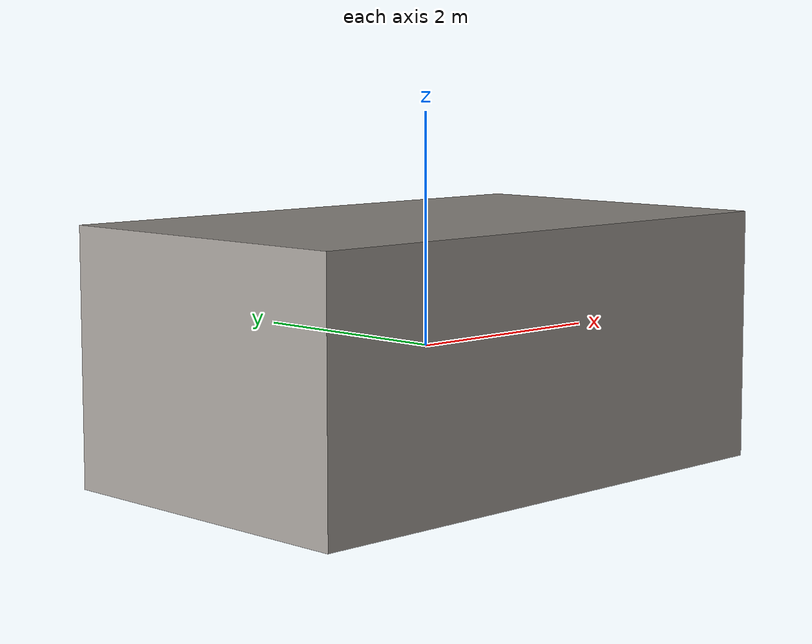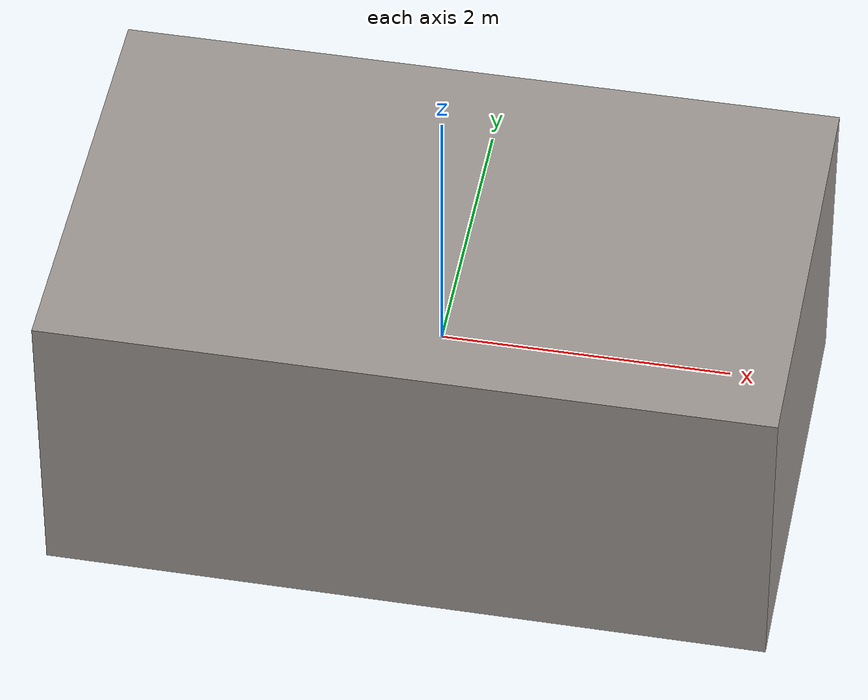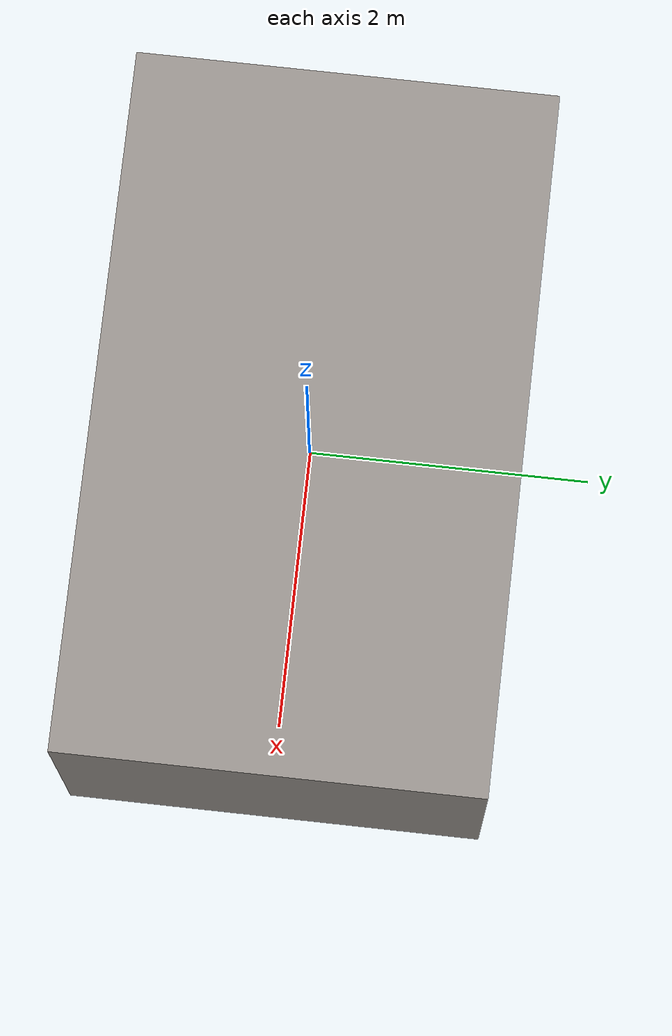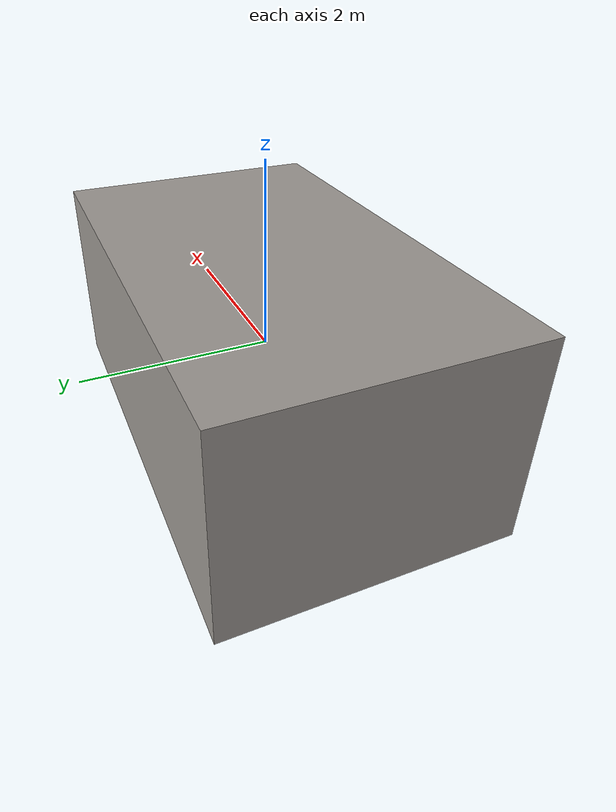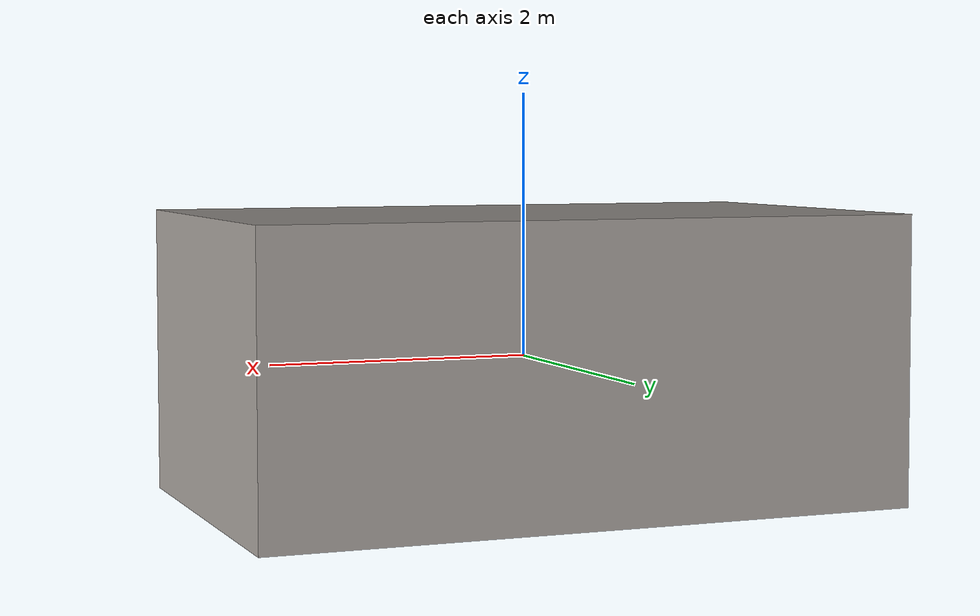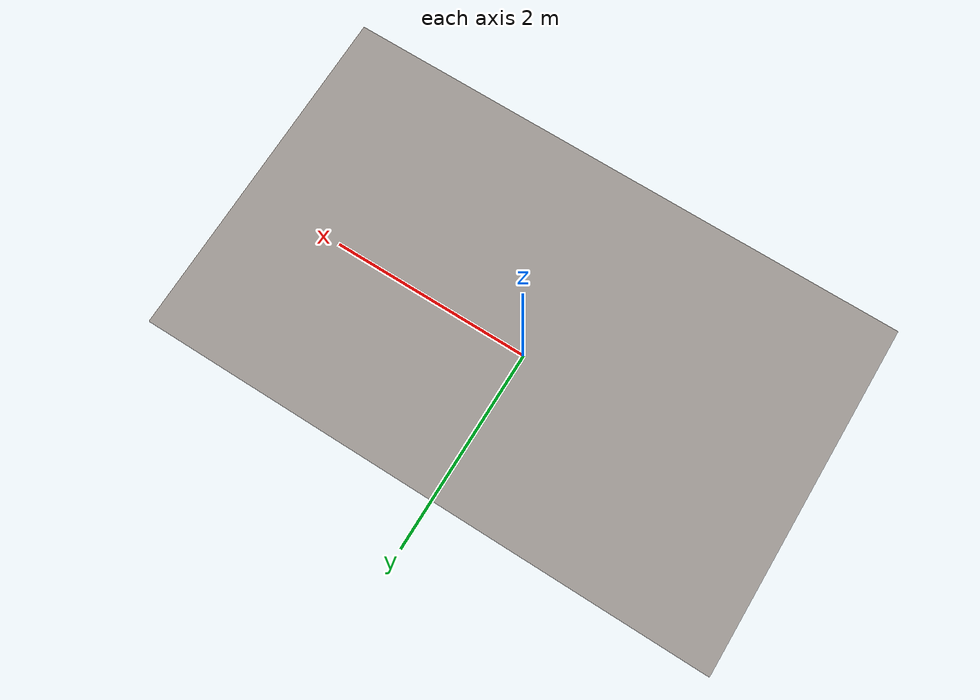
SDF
<?xml version="1.0"?>
<sdf version="1.6">
  <model name="clinic_core_station">
    <static>true</static>
    <link name="link">
      <collision name="col">
        <geometry>
          <box>
            <size>5.0 3.0 2.2</size>
          </box>
        </geometry>
      </collision>
      <visual name="vis">
        <geometry>
          <box>
            <size>5.0 3.0 2.2</size>
          </box>
        </geometry>
        <material>
          <ambient>0.62 0.6 0.58 1</ambient>
          <diffuse>0.62 0.6 0.58 1</diffuse>
        </material>
      </visual>
    </link>
  </model>
</sdf>
